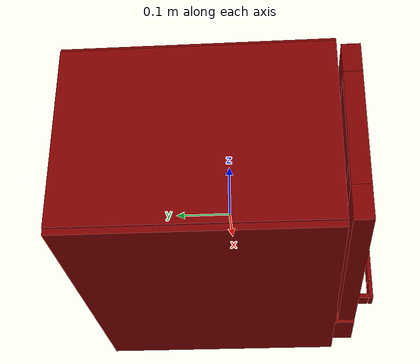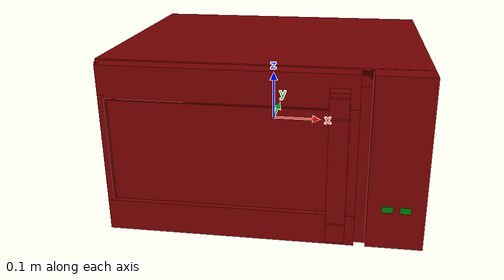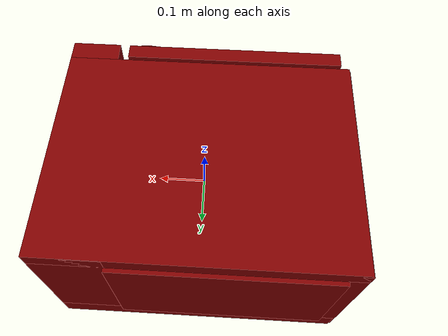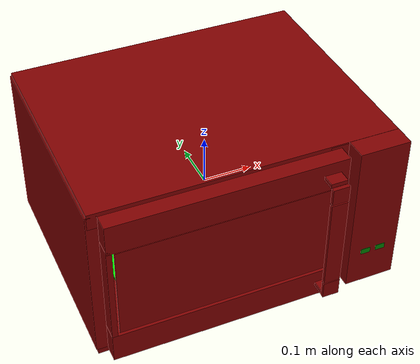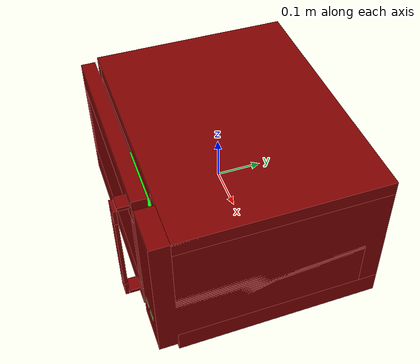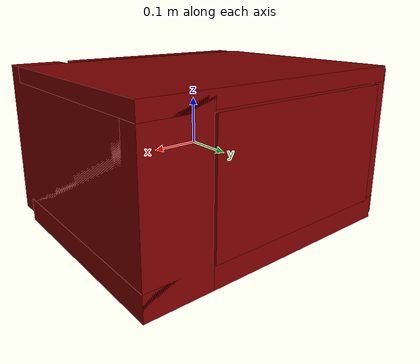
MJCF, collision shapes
<mujoco model="model">
  <compiler angle="radian"/>
  <asset>
    <mesh file="visuals/door.obj" name="door_vis"/>
    <mesh file="visuals/door_Clear.obj" name="door_Clear_vis"/>
    <mesh file="visuals/Body001.obj" name="Body001_vis"/>
    <mesh file="visuals/Disc001.obj" name="Disc001_vis"/>
    <texture file="visuals/T_BC001.png" name="Body001_material" type="2d"/>
    <material name="Body001_material" rgba="1 1 1 1.0" texture="Body001_material" shininess="0.2512328028678894" specular="0.3103448502657381"/>
    <texture file="visuals/T_BC001.png" name="door_material" type="2d"/>
    <material name="door_material" rgba="1 1 1 1.0" texture="door_material" shininess="0.2512328028678894" specular="0.3103448502657381"/>
    <texture file="visuals/T_BC001.png" name="door_Clear_material" type="2d"/>
    <material name="door_Clear_material" rgba="1 1 1 0.7471910119056702" texture="door_Clear_material" shininess="0.2512328028678894" specular="0.3103448502657381"/>
    <texture file="visuals/T_BC001.png" name="Disc001_material" type="2d"/>
    <material name="Disc001_material" rgba="1 1 1 1.0" texture="Disc001_material" shininess="0.2512328028678894" specular="0.3103448502657381"/>
  </asset>
  <default>
    <default class="visual">
      <geom conaffinity="0" contype="0" group="1" type="mesh"/>
    </default>
    <default class="collision">
      <geom group="0" rgba="0.5 0 0 0.5"/>
    </default>
    <default class="spawn">
      <geom group="0" rgba="1 1 1 0.5" contype="0" conaffinity="0"/>
      <site group="0" rgba="1 1 1 0.5"/>
    </default>
    <default class="region">
      <geom group="1" conaffinity="0" contype="0" rgba="0 1 0 0"/>
    </default>
  </default>
  <worldbody>
    <body>
      <body name="object">
        <geom class="collision" type="box" pos="0.268097847700119 -0.23947761952877045 -0.07438068836927414" size="0.010044815950095654 0.00039716094033792615 0.005932406522333622" quat="1.0 0.0 0.0 0.0" name="start_button" rgba="0.0 0.5 0 0.5"/>
        <geom class="collision" type="box" pos="0.236012265086174 -0.23947761952877045 -0.0741051733493805" size="0.010021580383181572 0.00039477957761846483 0.005918683484196663" quat="1.0 0.0 0.0 0.0" name="stop_button" rgba="0.0 0.5 0 0.5"/>
        <geom class="collision" type="box" pos="-0.05147402361035347 0.012592430226504803 -0.08613437414169312" size="0.18010281026363373 0.18010281026363373 0.0010897889733314514" quat="1.0 0.0 0.0 0.0" name="tray" rgba="0 1 0 0.5"/>
        <geom mesh="Body001_vis" type="mesh" solimp="0.998 0.998 0.001" solref="0.001 1" density="100" friction="0.95 0.3 0.1" class="visual" material="Body001_material"/>
        <geom class="collision" type="box" pos="-0.2849951386451721 0.03441102057695389 0.0022719348780810833" size="0.018535051494836807 0.23027189075946808 0.16289708018302917" quat="1.0 0.0 0.0 0.0"/>
        <geom class="collision" type="box" pos="0.23354178667068481 0.03441103547811508 -0.001706425566226244" size="0.0699884220957756 0.23027189075946808 0.17040039598941803" quat="1.0 0.0 0.0 0.0"/>
        <geom class="collision" type="box" pos="0.0015307824360206723 0.03441102057695389 0.15525704622268677" size="0.3019994795322418 0.23027189075946808 0.016291292384266853" quat="1.0 0.0 0.0 0.0"/>
        <geom class="collision" type="box" pos="0.0015307824360206723 0.03441102057695389 -0.1462588906288147" size="0.3019994795322418 0.23027189075946808 0.025847971439361572" quat="1.0 0.0 0.0 0.0"/>
        <geom class="collision" type="box" pos="0.2520768344402313 -0.008841663599014282 0.00927739031612873" size="0.05145339295268059 0.22968065738677979 0.16202665865421295" quat="1.0 0.0 0.0 0.0"/>
        <geom class="collision" type="box" pos="-0.051176734268665314 0.2412576526403427 0.008112117648124695" size="0.2174612581729889 0.030909761786460876 0.1282786726951599" quat="1.0 0.0 0.0 0.0"/>
        <body name="door">
          <joint axis="0.0 0.0 1.0" pos="-0.28249019384384155 -0.2167174220085144 0.009364393539726734" limited="true" name="microjoint" range="-1.5707963267948966 0.0" type="hinge" damping="1" frictionloss="1" armature=".01" stiffness="0.05"/>
          <geom mesh="door_vis" type="mesh" solimp="0.998 0.998 0.001" solref="0.001 1" density="100" friction="0.95 0.3 0.1" class="visual" material="door_material"/>
          <geom class="collision" type="box" pos="-0.05213925614953041 -0.22135379910469055 0.14094433188438416" size="0.23154079914093018 0.01645495742559433 0.030738787725567818" quat="1.0 0.0 0.0 0.0"/>
          <geom class="collision" type="box" pos="-0.05213925614953041 -0.22135379910469055 -0.12297418713569641" size="0.23154079914093018 0.01645495742559433 0.030204514041543007" quat="1.0 0.0 0.0 0.0"/>
          <geom class="collision" type="box" pos="0.1709749400615692 -0.22135379910469055 0.007308010943233967" size="0.008497205562889576 0.01645495742559433 0.10907303541898727" quat="1.0 0.0 0.0 0.0"/>
          <geom class="collision" type="box" pos="-0.2781965732574463 -0.22135379910469055 0.011805683374404907" size="0.005483501590788364 0.01645495742559433 0.10457536578178406" quat="1.0 0.0 0.0 0.0"/>
          <geom class="collision" type="box" pos="0.1452796310186386 -0.26820647716522217 -0.1098703071475029" size="0.01679394580423832 0.00402682414278388 0.017611565068364143" quat="1.0 0.0 0.0 0.0"/>
          <geom class="collision" type="box" pos="0.14527960121631622 -0.2682083547115326 0.12247511744499207" size="0.01679394766688347 0.004026825539767742 0.01692659966647625" quat="1.0 0.0 0.0 0.0"/>
          <geom class="collision" type="box" pos="0.14527955651283264 -0.24828603863716125 0.14250098168849945" size="0.01679397001862526 0.014321288093924522 0.00414813868701458" quat="1.0 0.0 0.0 0.0"/>
          <geom class="collision" type="box" pos="0.1455850899219513 -0.24860119819641113 -0.12285201996564865" size="0.016553714871406555 0.014636514708399773 0.004380006343126297" quat="1.0 0.0 0.0 0.0"/>
          <geom class="collision" type="box" pos="0.14527961611747742 -0.26820647716522217 0.006380615755915642" size="0.016794003546237946 0.004026838578283787 0.09616335481405258" quat="1.0 0.0 0.0 0.0" name="door_handle"/>
          <body name="door_Clear">
            <geom mesh="door_Clear_vis" type="mesh" solimp="0.998 0.998 0.001" solref="0.001 1" density="100" friction="0.95 0.3 0.1" class="visual" material="door_Clear_material"/>
            <geom class="collision" type="box" pos="-0.05450509488582611 -0.234267458319664 0.009512441232800484" size="0.2134915143251419 0.0018031434156000614 0.09722526371479034" quat="1.0 0.0 0.0 0.0"/>
          </body>
        </body>
        <body name="Disc001">
          <joint axis="0.0 0.0 -1.0" pos="-0.051502544432878494 0.012263437733054161 -0.09843337535858154" limited="false" name="Disc001_joint" range="0 360" type="hinge" damping="1" frictionloss="1" armature=".01" stiffness="0.05"/>
          <geom mesh="Disc001_vis" type="mesh" solimp="0.998 0.998 0.001" solref="0.001 1" density="100" friction="0.95 0.3 0.1" class="visual" material="Disc001_material"/>
          <geom class="collision" type="cylinder" pos="-0.051430925726890564 0.011861948296427727 -0.1013718992471695" size="0.18141727149486542 0.011886587366461754" quat="1.0 0.0 0.0 0.0"/>
        </body>
        <geom class="region" name="reg_main" type="box" pos="0.0 0.01682252064347267 -1.2700650531272117e-09" size="0.303530216217041 0.25534486770629883 0.17168311774730682"/>
        <geom class="region" name="reg_int" type="box" pos="-0.05146985501050949 0.00960935652256012 0.009085603058338165" size="0.21449140459299088 0.20383259654045105 0.12945794314146042"/>
      </body>
    </body>
  </worldbody>
  <actuator>
    <motor name="microjoint_actuator" joint="microjoint" gear="10"/>
    <motor name="Disc001_joint_actuator" joint="Disc001_joint" gear="10"/>
  </actuator>
</mujoco>
